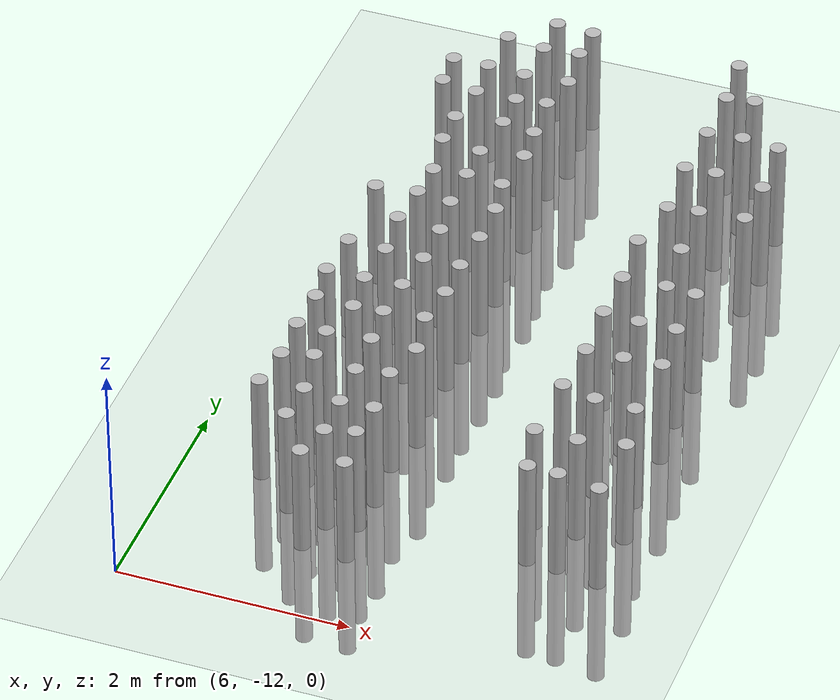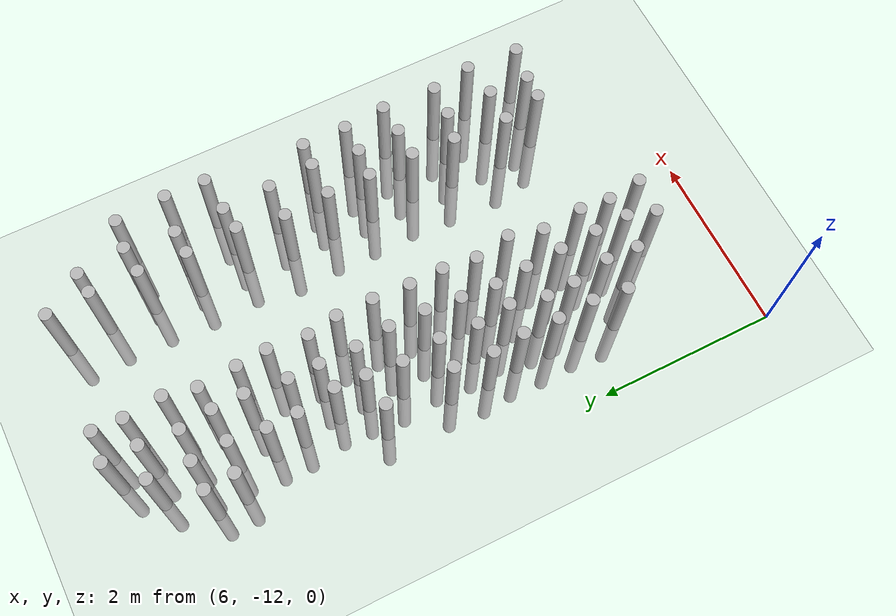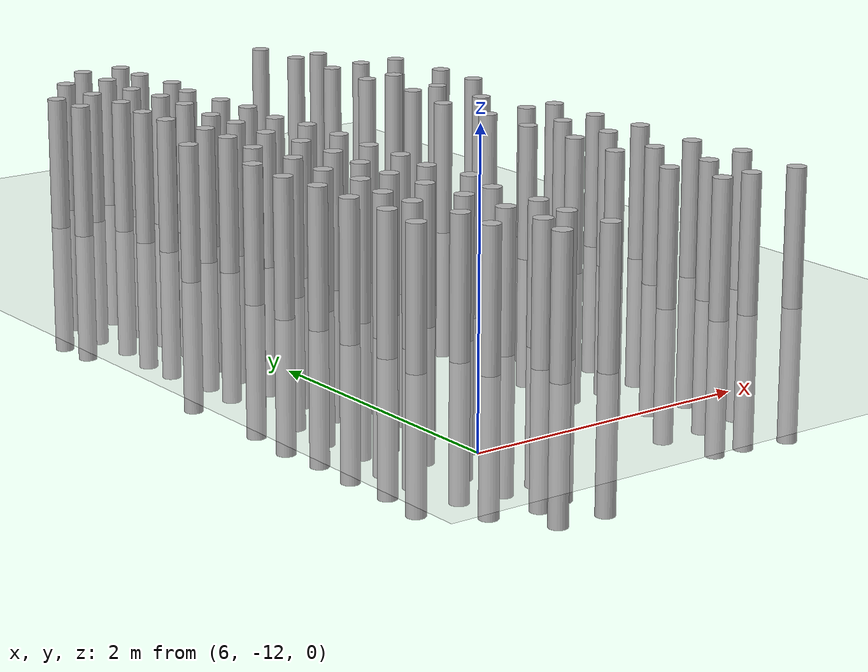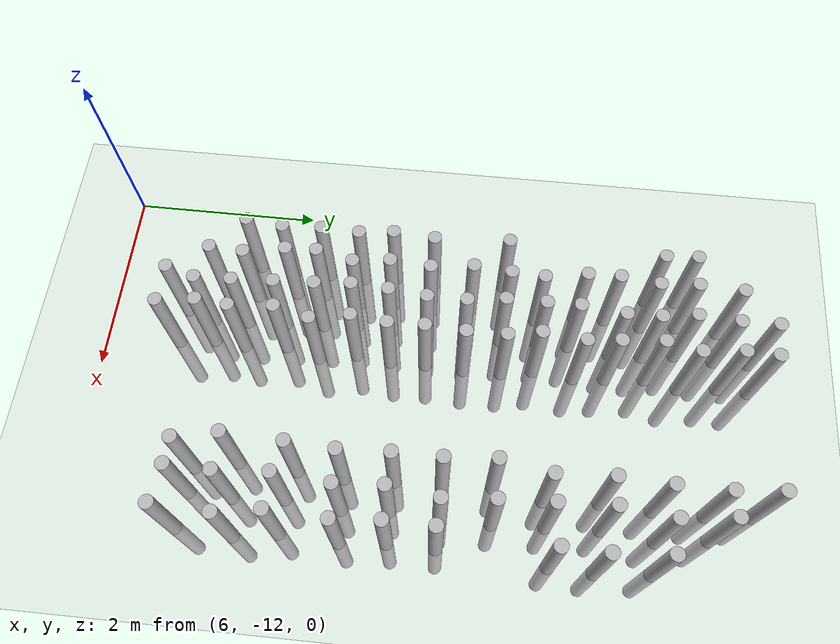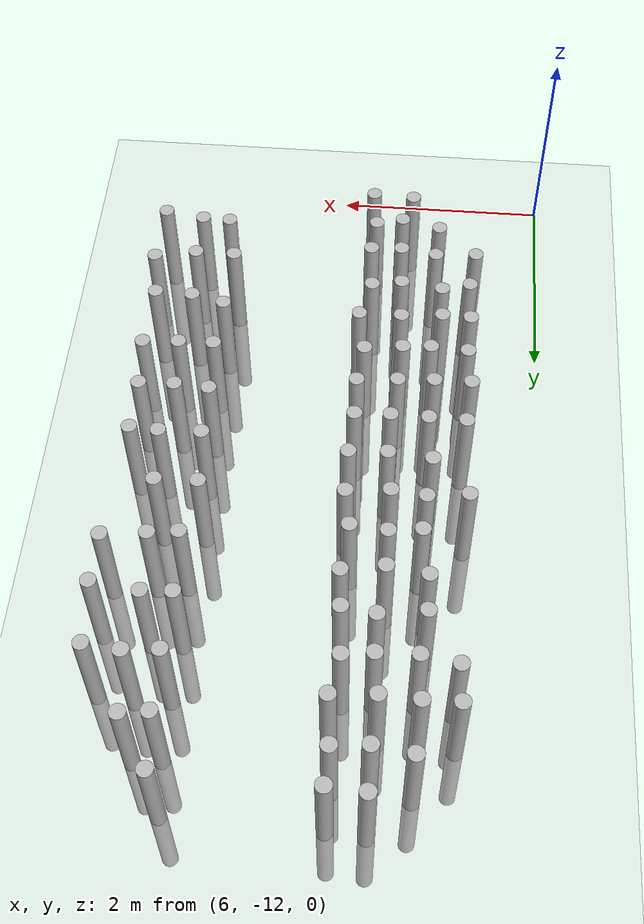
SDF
<sdf version="1.7">
 <world name="farmland_world">
  <model name="ground_plane">
   <static>1</static>
   <link name="link">
    <collision name="collision">
     <geometry><plane><normal>0 0 1</normal><size>40.0 40.0</size></plane></geometry>
     <surface><friction><ode><mu>100</mu><mu2>50</mu2></ode></friction></surface>
    </collision>
    <visual name="visual">
     <cast_shadows>0</cast_shadows>
     <geometry><plane><normal>0 0 1</normal><size>40.0 40.0</size></plane></geometry>
     <material>
      <script><uri>file://media/materials/scripts/gazebo.material</uri><name>Gazebo/Grey</name></script>
     </material>
    </visual>
   </link>
  </model>
  <model name="tree_3_210">
   <static>1</static>
   <link name="link">
    <collision name="collision">
     <geometry><cylinder><radius>0.07</radius><length>2.0</length></cylinder></geometry>
     <surface><friction><ode><mu>100</mu><mu2>50</mu2></ode></friction></surface>
    </collision>
    <visual name="visual">
     <geometry><cylinder><radius>0.07</radius><length>2.0</length></cylinder></geometry>
    </visual>
   </link>
   <pose>6.661419430506792 -5.869503759732511 0 0 0 0</pose>
  </model>
  <model name="tree_3_211">
   <static>1</static>
   <link name="link">
    <collision name="collision">
     <geometry><cylinder><radius>0.07</radius><length>2.0</length></cylinder></geometry>
     <surface><friction><ode><mu>100</mu><mu2>50</mu2></ode></friction></surface>
    </collision>
    <visual name="visual">
     <geometry><cylinder><radius>0.07</radius><length>2.0</length></cylinder></geometry>
    </visual>
   </link>
   <pose>6.680578724758737 -6.192556511057894 0 0 0 0</pose>
  </model>
  <model name="tree_3_215">
   <static>1</static>
   <link name="link">
    <collision name="collision">
     <geometry><cylinder><radius>0.07</radius><length>2.0</length></cylinder></geometry>
     <surface><friction><ode><mu>100</mu><mu2>50</mu2></ode></friction></surface>
    </collision>
    <visual name="visual">
     <geometry><cylinder><radius>0.07</radius><length>2.0</length></cylinder></geometry>
    </visual>
   </link>
   <pose>6.653816566270396 -7.769729110112926 0 0 0 0</pose>
  </model>
  <model name="tree_3_217">
   <static>1</static>
   <link name="link">
    <collision name="collision">
     <geometry><cylinder><radius>0.07</radius><length>2.0</length></cylinder></geometry>
     <surface><friction><ode><mu>100</mu><mu2>50</mu2></ode></friction></surface>
    </collision>
    <visual name="visual">
     <geometry><cylinder><radius>0.07</radius><length>2.0</length></cylinder></geometry>
    </visual>
   </link>
   <pose>6.698355699277604 -8.5338426556386 0 0 0 0</pose>
  </model>
  <model name="tree_3_218">
   <static>1</static>
   <link name="link">
    <collision name="collision">
     <geometry><cylinder><radius>0.07</radius><length>2.0</length></cylinder></geometry>
     <surface><friction><ode><mu>100</mu><mu2>50</mu2></ode></friction></surface>
    </collision>
    <visual name="visual">
     <geometry><cylinder><radius>0.07</radius><length>2.0</length></cylinder></geometry>
    </visual>
   </link>
   <pose>6.665693791469962 -8.95836685906748 0 0 0 0</pose>
  </model>
  <model name="tree_3_219">
   <static>1</static>
   <link name="link">
    <collision name="collision">
     <geometry><cylinder><radius>0.07</radius><length>2.0</length></cylinder></geometry>
     <surface><friction><ode><mu>100</mu><mu2>50</mu2></ode></friction></surface>
    </collision>
    <visual name="visual">
     <geometry><cylinder><radius>0.07</radius><length>2.0</length></cylinder></geometry>
    </visual>
   </link>
   <pose>6.705296153752825 -9.312489090265583 0 0 0 0</pose>
  </model>
  <model name="tree_3_220">
   <static>1</static>
   <link name="link">
    <collision name="collision">
     <geometry><cylinder><radius>0.07</radius><length>2.0</length></cylinder></geometry>
     <surface><friction><ode><mu>100</mu><mu2>50</mu2></ode></friction></surface>
    </collision>
    <visual name="visual">
     <geometry><cylinder><radius>0.07</radius><length>2.0</length></cylinder></geometry>
    </visual>
   </link>
   <pose>6.690504521665071 -9.702902558167029 0 0 0 0</pose>
  </model>
  <model name="tree_3_221">
   <static>1</static>
   <link name="link">
    <collision name="collision">
     <geometry><cylinder><radius>0.07</radius><length>2.0</length></cylinder></geometry>
     <surface><friction><ode><mu>100</mu><mu2>50</mu2></ode></friction></surface>
    </collision>
    <visual name="visual">
     <geometry><cylinder><radius>0.07</radius><length>2.0</length></cylinder></geometry>
    </visual>
   </link>
   <pose>6.709044371966493 -10.103652705946471 0 0 0 0</pose>
  </model>
  <model name="tree_3_222">
   <static>1</static>
   <link name="link">
    <collision name="collision">
     <geometry><cylinder><radius>0.07</radius><length>2.0</length></cylinder></geometry>
     <surface><friction><ode><mu>100</mu><mu2>50</mu2></ode></friction></surface>
    </collision>
    <visual name="visual">
     <geometry><cylinder><radius>0.07</radius><length>2.0</length></cylinder></geometry>
    </visual>
   </link>
   <pose>6.664566086439536 -10.48297500048212 0 0 0 0</pose>
  </model>
  <model name="tree_3_249">
   <static>1</static>
   <link name="link">
    <collision name="collision">
     <geometry><cylinder><radius>0.07</radius><length>2.0</length></cylinder></geometry>
     <surface><friction><ode><mu>100</mu><mu2>50</mu2></ode></friction></surface>
    </collision>
    <visual name="visual">
     <geometry><cylinder><radius>0.07</radius><length>2.0</length></cylinder></geometry>
    </visual>
   </link>
   <pose>6.997508072333215 -5.421699455969343 0 0 0 0</pose>
  </model>
  <model name="tree_3_250">
   <static>1</static>
   <link name="link">
    <collision name="collision">
     <geometry><cylinder><radius>0.07</radius><length>2.0</length></cylinder></geometry>
     <surface><friction><ode><mu>100</mu><mu2>50</mu2></ode></friction></surface>
    </collision>
    <visual name="visual">
     <geometry><cylinder><radius>0.07</radius><length>2.0</length></cylinder></geometry>
    </visual>
   </link>
   <pose>6.974443119919996 -5.865752800736061 0 0 0 0</pose>
  </model>
  <model name="tree_3_251">
   <static>1</static>
   <link name="link">
    <collision name="collision">
     <geometry><cylinder><radius>0.07</radius><length>2.0</length></cylinder></geometry>
     <surface><friction><ode><mu>100</mu><mu2>50</mu2></ode></friction></surface>
    </collision>
    <visual name="visual">
     <geometry><cylinder><radius>0.07</radius><length>2.0</length></cylinder></geometry>
    </visual>
   </link>
   <pose>7.002675457728153 -6.249060670467198 0 0 0 0</pose>
  </model>
  <model name="tree_3_252">
   <static>1</static>
   <link name="link">
    <collision name="collision">
     <geometry><cylinder><radius>0.07</radius><length>2.0</length></cylinder></geometry>
     <surface><friction><ode><mu>100</mu><mu2>50</mu2></ode></friction></surface>
    </collision>
    <visual name="visual">
     <geometry><cylinder><radius>0.07</radius><length>2.0</length></cylinder></geometry>
    </visual>
   </link>
   <pose>6.95506890457846 -6.6422497030970415 0 0 0 0</pose>
  </model>
  <model name="tree_3_253">
   <static>1</static>
   <link name="link">
    <collision name="collision">
     <geometry><cylinder><radius>0.07</radius><length>2.0</length></cylinder></geometry>
     <surface><friction><ode><mu>100</mu><mu2>50</mu2></ode></friction></surface>
    </collision>
    <visual name="visual">
     <geometry><cylinder><radius>0.07</radius><length>2.0</length></cylinder></geometry>
    </visual>
   </link>
   <pose>6.9599966379608444 -6.970294331644617 0 0 0 0</pose>
  </model>
  <model name="tree_3_254">
   <static>1</static>
   <link name="link">
    <collision name="collision">
     <geometry><cylinder><radius>0.07</radius><length>2.0</length></cylinder></geometry>
     <surface><friction><ode><mu>100</mu><mu2>50</mu2></ode></friction></surface>
    </collision>
    <visual name="visual">
     <geometry><cylinder><radius>0.07</radius><length>2.0</length></cylinder></geometry>
    </visual>
   </link>
   <pose>7.0315215357628995 -7.395706081586436 0 0 0 0</pose>
  </model>
  <model name="tree_3_255">
   <static>1</static>
   <link name="link">
    <collision name="collision">
     <geometry><cylinder><radius>0.07</radius><length>2.0</length></cylinder></geometry>
     <surface><friction><ode><mu>100</mu><mu2>50</mu2></ode></friction></surface>
    </collision>
    <visual name="visual">
     <geometry><cylinder><radius>0.07</radius><length>2.0</length></cylinder></geometry>
    </visual>
   </link>
   <pose>7.012227970563352 -7.7275407467975805 0 0 0 0</pose>
  </model>
  <model name="tree_3_256">
   <static>1</static>
   <link name="link">
    <collision name="collision">
     <geometry><cylinder><radius>0.07</radius><length>2.0</length></cylinder></geometry>
     <surface><friction><ode><mu>100</mu><mu2>50</mu2></ode></friction></surface>
    </collision>
    <visual name="visual">
     <geometry><cylinder><radius>0.07</radius><length>2.0</length></cylinder></geometry>
    </visual>
   </link>
   <pose>6.977696349704288 -8.110780625535874 0 0 0 0</pose>
  </model>
  <model name="tree_3_257">
   <static>1</static>
   <link name="link">
    <collision name="collision">
     <geometry><cylinder><radius>0.07</radius><length>2.0</length></cylinder></geometry>
     <surface><friction><ode><mu>100</mu><mu2>50</mu2></ode></friction></surface>
    </collision>
    <visual name="visual">
     <geometry><cylinder><radius>0.07</radius><length>2.0</length></cylinder></geometry>
    </visual>
   </link>
   <pose>7.029531110943387 -8.542619174548339 0 0 0 0</pose>
  </model>
  <model name="tree_3_258">
   <static>1</static>
   <link name="link">
    <collision name="collision">
     <geometry><cylinder><radius>0.07</radius><length>2.0</length></cylinder></geometry>
     <surface><friction><ode><mu>100</mu><mu2>50</mu2></ode></friction></surface>
    </collision>
    <visual name="visual">
     <geometry><cylinder><radius>0.07</radius><length>2.0</length></cylinder></geometry>
    </visual>
   </link>
   <pose>6.997785902423107 -8.956691142306541 0 0 0 0</pose>
  </model>
  <model name="tree_3_259">
   <static>1</static>
   <link name="link">
    <collision name="collision">
     <geometry><cylinder><radius>0.07</radius><length>2.0</length></cylinder></geometry>
     <surface><friction><ode><mu>100</mu><mu2>50</mu2></ode></friction></surface>
    </collision>
    <visual name="visual">
     <geometry><cylinder><radius>0.07</radius><length>2.0</length></cylinder></geometry>
    </visual>
   </link>
   <pose>7.042367247502619 -9.334998658792525 0 0 0 0</pose>
  </model>
  <model name="tree_3_260">
   <static>1</static>
   <link name="link">
    <collision name="collision">
     <geometry><cylinder><radius>0.07</radius><length>2.0</length></cylinder></geometry>
     <surface><friction><ode><mu>100</mu><mu2>50</mu2></ode></friction></surface>
    </collision>
    <visual name="visual">
     <geometry><cylinder><radius>0.07</radius><length>2.0</length></cylinder></geometry>
    </visual>
   </link>
   <pose>6.95273990331792 -9.716243220257393 0 0 0 0</pose>
  </model>
  <model name="tree_3_261">
   <static>1</static>
   <link name="link">
    <collision name="collision">
     <geometry><cylinder><radius>0.07</radius><length>2.0</length></cylinder></geometry>
     <surface><friction><ode><mu>100</mu><mu2>50</mu2></ode></friction></surface>
    </collision>
    <visual name="visual">
     <geometry><cylinder><radius>0.07</radius><length>2.0</length></cylinder></geometry>
    </visual>
   </link>
   <pose>6.966295142556262 -10.031080103076011 0 0 0 0</pose>
  </model>
  <model name="tree_3_262">
   <static>1</static>
   <link name="link">
    <collision name="collision">
     <geometry><cylinder><radius>0.07</radius><length>2.0</length></cylinder></geometry>
     <surface><friction><ode><mu>100</mu><mu2>50</mu2></ode></friction></surface>
    </collision>
    <visual name="visual">
     <geometry><cylinder><radius>0.07</radius><length>2.0</length></cylinder></geometry>
    </visual>
   </link>
   <pose>7.040948426436231 -10.4532282558649 0 0 0 0</pose>
  </model>
  <model name="tree_3_263">
   <static>1</static>
   <link name="link">
    <collision name="collision">
     <geometry><cylinder><radius>0.07</radius><length>2.0</length></cylinder></geometry>
     <surface><friction><ode><mu>100</mu><mu2>50</mu2></ode></friction></surface>
    </collision>
    <visual name="visual">
     <geometry><cylinder><radius>0.07</radius><length>2.0</length></cylinder></geometry>
    </visual>
   </link>
   <pose>7.020194036395752 -10.800615734483198 0 0 0 0</pose>
  </model>
  <model name="tree_3_288">
   <static>1</static>
   <link name="link">
    <collision name="collision">
     <geometry><cylinder><radius>0.07</radius><length>2.0</length></cylinder></geometry>
     <surface><friction><ode><mu>100</mu><mu2>50</mu2></ode></friction></surface>
    </collision>
    <visual name="visual">
     <geometry><cylinder><radius>0.07</radius><length>2.0</length></cylinder></geometry>
    </visual>
   </link>
   <pose>7.338082127825745 -5.097177732498156 0 0 0 0</pose>
  </model>
  <model name="tree_3_289">
   <static>1</static>
   <link name="link">
    <collision name="collision">
     <geometry><cylinder><radius>0.07</radius><length>2.0</length></cylinder></geometry>
     <surface><friction><ode><mu>100</mu><mu2>50</mu2></ode></friction></surface>
    </collision>
    <visual name="visual">
     <geometry><cylinder><radius>0.07</radius><length>2.0</length></cylinder></geometry>
    </visual>
   </link>
   <pose>7.341902268812603 -5.471091295825615 0 0 0 0</pose>
  </model>
  <model name="tree_3_290">
   <static>1</static>
   <link name="link">
    <collision name="collision">
     <geometry><cylinder><radius>0.07</radius><length>2.0</length></cylinder></geometry>
     <surface><friction><ode><mu>100</mu><mu2>50</mu2></ode></friction></surface>
    </collision>
    <visual name="visual">
     <geometry><cylinder><radius>0.07</radius><length>2.0</length></cylinder></geometry>
    </visual>
   </link>
   <pose>7.312480040197038 -5.885815736466504 0 0 0 0</pose>
  </model>
  <model name="tree_3_291">
   <static>1</static>
   <link name="link">
    <collision name="collision">
     <geometry><cylinder><radius>0.07</radius><length>2.0</length></cylinder></geometry>
     <surface><friction><ode><mu>100</mu><mu2>50</mu2></ode></friction></surface>
    </collision>
    <visual name="visual">
     <geometry><cylinder><radius>0.07</radius><length>2.0</length></cylinder></geometry>
    </visual>
   </link>
   <pose>7.360058016991394 -6.237891845271689 0 0 0 0</pose>
  </model>
  <model name="tree_3_292">
   <static>1</static>
   <link name="link">
    <collision name="collision">
     <geometry><cylinder><radius>0.07</radius><length>2.0</length></cylinder></geometry>
     <surface><friction><ode><mu>100</mu><mu2>50</mu2></ode></friction></surface>
    </collision>
    <visual name="visual">
     <geometry><cylinder><radius>0.07</radius><length>2.0</length></cylinder></geometry>
    </visual>
   </link>
   <pose>7.364464044634327 -6.581974338922381 0 0 0 0</pose>
  </model>
  <model name="tree_3_293">
   <static>1</static>
   <link name="link">
    <collision name="collision">
     <geometry><cylinder><radius>0.07</radius><length>2.0</length></cylinder></geometry>
     <surface><friction><ode><mu>100</mu><mu2>50</mu2></ode></friction></surface>
    </collision>
    <visual name="visual">
     <geometry><cylinder><radius>0.07</radius><length>2.0</length></cylinder></geometry>
    </visual>
   </link>
   <pose>7.315899234007439 -7.027452525969025 0 0 0 0</pose>
  </model>
  <model name="tree_3_294">
   <static>1</static>
   <link name="link">
    <collision name="collision">
     <geometry><cylinder><radius>0.07</radius><length>2.0</length></cylinder></geometry>
     <surface><friction><ode><mu>100</mu><mu2>50</mu2></ode></friction></surface>
    </collision>
    <visual name="visual">
     <geometry><cylinder><radius>0.07</radius><length>2.0</length></cylinder></geometry>
    </visual>
   </link>
   <pose>7.318537594245278 -7.362619189310038 0 0 0 0</pose>
  </model>
  <model name="tree_3_295">
   <static>1</static>
   <link name="link">
    <collision name="collision">
     <geometry><cylinder><radius>0.07</radius><length>2.0</length></cylinder></geometry>
     <surface><friction><ode><mu>100</mu><mu2>50</mu2></ode></friction></surface>
    </collision>
    <visual name="visual">
     <geometry><cylinder><radius>0.07</radius><length>2.0</length></cylinder></geometry>
    </visual>
   </link>
   <pose>7.318795905203578 -7.764601789874104 0 0 0 0</pose>
  </model>
  <model name="tree_3_296">
   <static>1</static>
   <link name="link">
    <collision name="collision">
     <geometry><cylinder><radius>0.07</radius><length>2.0</length></cylinder></geometry>
     <surface><friction><ode><mu>100</mu><mu2>50</mu2></ode></friction></surface>
    </collision>
    <visual name="visual">
     <geometry><cylinder><radius>0.07</radius><length>2.0</length></cylinder></geometry>
    </visual>
   </link>
   <pose>7.366415398217115 -8.148430344069395 0 0 0 0</pose>
  </model>
  <model name="tree_3_297">
   <static>1</static>
   <link name="link">
    <collision name="collision">
     <geometry><cylinder><radius>0.07</radius><length>2.0</length></cylinder></geometry>
     <surface><friction><ode><mu>100</mu><mu2>50</mu2></ode></friction></surface>
    </collision>
    <visual name="visual">
     <geometry><cylinder><radius>0.07</radius><length>2.0</length></cylinder></geometry>
    </visual>
   </link>
   <pose>7.3659171061617394 -8.548735187188734 0 0 0 0</pose>
  </model>
  <model name="tree_3_298">
   <static>1</static>
   <link name="link">
    <collision name="collision">
     <geometry><cylinder><radius>0.07</radius><length>2.0</length></cylinder></geometry>
     <surface><friction><ode><mu>100</mu><mu2>50</mu2></ode></friction></surface>
    </collision>
    <visual name="visual">
     <geometry><cylinder><radius>0.07</radius><length>2.0</length></cylinder></geometry>
    </visual>
   </link>
   <pose>7.323950699725348 -8.938228352238765 0 0 0 0</pose>
  </model>
  <model name="tree_3_299">
   <static>1</static>
   <link name="link">
    <collision name="collision">
     <geometry><cylinder><radius>0.07</radius><length>2.0</length></cylinder></geometry>
     <surface><friction><ode><mu>100</mu><mu2>50</mu2></ode></friction></surface>
    </collision>
    <visual name="visual">
     <geometry><cylinder><radius>0.07</radius><length>2.0</length></cylinder></geometry>
    </visual>
   </link>
   <pose>7.299284211380461 -9.31605158833739 0 0 0 0</pose>
  </model>
  <model name="tree_3_300">
   <static>1</static>
   <link name="link">
    <collision name="collision">
     <geometry><cylinder><radius>0.07</radius><length>2.0</length></cylinder></geometry>
     <surface><friction><ode><mu>100</mu><mu2>50</mu2></ode></friction></surface>
    </collision>
    <visual name="visual">
     <geometry><cylinder><radius>0.07</radius><length>2.0</length></cylinder></geometry>
    </visual>
   </link>
   <pose>7.329983277772594 -9.681892419258995 0 0 0 0</pose>
  </model>
  <model name="tree_3_301">
   <static>1</static>
   <link name="link">
    <collision name="collision">
     <geometry><cylinder><radius>0.07</radius><length>2.0</length></cylinder></geometry>
     <surface><friction><ode><mu>100</mu><mu2>50</mu2></ode></friction></surface>
    </collision>
    <visual name="visual">
     <geometry><cylinder><radius>0.07</radius><length>2.0</length></cylinder></geometry>
    </visual>
   </link>
   <pose>7.347064204319776 -10.091519056092961 0 0 0 0</pose>
  </model>
  <model name="tree_3_302">
   <static>1</static>
   <link name="link">
    <collision name="collision">
     <geometry><cylinder><radius>0.07</radius><length>2.0</length></cylinder></geometry>
     <surface><friction><ode><mu>100</mu><mu2>50</mu2></ode></friction></surface>
    </collision>
    <visual name="visual">
     <geometry><cylinder><radius>0.07</radius><length>2.0</length></cylinder></geometry>
    </visual>
   </link>
   <pose>7.369427873741423 -10.510392032623004 0 0 0 0</pose>
  </model>
  <model name="tree_3_303">
   <static>1</static>
   <link name="link">
    <collision name="collision">
     <geometry><cylinder><radius>0.07</radius><length>2.0</length></cylinder></geometry>
     <surface><friction><ode><mu>100</mu><mu2>50</mu2></ode></friction></surface>
    </collision>
    <visual name="visual">
     <geometry><cylinder><radius>0.07</radius><length>2.0</length></cylinder></geometry>
    </visual>
   </link>
   <pose>7.377949473601482 -10.886628802909703 0 0 0 0</pose>
  </model>
  <model name="tree_3_304">
   <static>1</static>
   <link name="link">
    <collision name="collision">
     <geometry><cylinder><radius>0.07</radius><length>2.0</length></cylinder></geometry>
     <surface><friction><ode><mu>100</mu><mu2>50</mu2></ode></friction></surface>
    </collision>
    <visual name="visual">
     <geometry><cylinder><radius>0.07</radius><length>2.0</length></cylinder></geometry>
    </visual>
   </link>
   <pose>7.289111950155678 -11.188456390560404 0 0 0 0</pose>
  </model>
  <model name="tree_3_328">
   <static>1</static>
   <link name="link">
    <collision name="collision">
     <geometry><cylinder><radius>0.07</radius><length>2.0</length></cylinder></geometry>
     <surface><friction><ode><mu>100</mu><mu2>50</mu2></ode></friction></surface>
    </collision>
    <visual name="visual">
     <geometry><cylinder><radius>0.07</radius><length>2.0</length></cylinder></geometry>
    </visual>
   </link>
   <pose>7.669363551949399 -5.122112792533206 0 0 0 0</pose>
  </model>
  <model name="tree_3_329">
   <static>1</static>
   <link name="link">
    <collision name="collision">
     <geometry><cylinder><radius>0.07</radius><length>2.0</length></cylinder></geometry>
     <surface><friction><ode><mu>100</mu><mu2>50</mu2></ode></friction></surface>
    </collision>
    <visual name="visual">
     <geometry><cylinder><radius>0.07</radius><length>2.0</length></cylinder></geometry>
    </visual>
   </link>
   <pose>7.6567030119739306 -5.442221363439872 0 0 0 0</pose>
  </model>
  <model name="tree_3_330">
   <static>1</static>
   <link name="link">
    <collision name="collision">
     <geometry><cylinder><radius>0.07</radius><length>2.0</length></cylinder></geometry>
     <surface><friction><ode><mu>100</mu><mu2>50</mu2></ode></friction></surface>
    </collision>
    <visual name="visual">
     <geometry><cylinder><radius>0.07</radius><length>2.0</length></cylinder></geometry>
    </visual>
   </link>
   <pose>7.698571622125114 -5.858482230105319 0 0 0 0</pose>
  </model>
  <model name="tree_3_331">
   <static>1</static>
   <link name="link">
    <collision name="collision">
     <geometry><cylinder><radius>0.07</radius><length>2.0</length></cylinder></geometry>
     <surface><friction><ode><mu>100</mu><mu2>50</mu2></ode></friction></surface>
    </collision>
    <visual name="visual">
     <geometry><cylinder><radius>0.07</radius><length>2.0</length></cylinder></geometry>
    </visual>
   </link>
   <pose>7.625345487487055 -6.204829100969283 0 0 0 0</pose>
  </model>
  <model name="tree_3_332">
   <static>1</static>
   <link name="link">
    <collision name="collision">
     <geometry><cylinder><radius>0.07</radius><length>2.0</length></cylinder></geometry>
     <surface><friction><ode><mu>100</mu><mu2>50</mu2></ode></friction></surface>
    </collision>
    <visual name="visual">
     <geometry><cylinder><radius>0.07</radius><length>2.0</length></cylinder></geometry>
    </visual>
   </link>
   <pose>7.659286082254485 -6.627593535540693 0 0 0 0</pose>
  </model>
  <model name="tree_3_333">
   <static>1</static>
   <link name="link">
    <collision name="collision">
     <geometry><cylinder><radius>0.07</radius><length>2.0</length></cylinder></geometry>
     <surface><friction><ode><mu>100</mu><mu2>50</mu2></ode></friction></surface>
    </collision>
    <visual name="visual">
     <geometry><cylinder><radius>0.07</radius><length>2.0</length></cylinder></geometry>
    </visual>
   </link>
   <pose>7.688352643096186 -6.961790508193157 0 0 0 0</pose>
  </model>
  <model name="tree_3_334">
   <static>1</static>
   <link name="link">
    <collision name="collision">
     <geometry><cylinder><radius>0.07</radius><length>2.0</length></cylinder></geometry>
     <surface><friction><ode><mu>100</mu><mu2>50</mu2></ode></friction></surface>
    </collision>
    <visual name="visual">
     <geometry><cylinder><radius>0.07</radius><length>2.0</length></cylinder></geometry>
    </visual>
   </link>
   <pose>7.645060633562767 -7.393798231412224 0 0 0 0</pose>
  </model>
  <model name="tree_3_335">
   <static>1</static>
   <link name="link">
    <collision name="collision">
     <geometry><cylinder><radius>0.07</radius><length>2.0</length></cylinder></geometry>
     <surface><friction><ode><mu>100</mu><mu2>50</mu2></ode></friction></surface>
    </collision>
    <visual name="visual">
     <geometry><cylinder><radius>0.07</radius><length>2.0</length></cylinder></geometry>
    </visual>
   </link>
   <pose>7.703946183450229 -7.728497909033914 0 0 0 0</pose>
  </model>
  <model name="tree_3_336">
   <static>1</static>
   <link name="link">
    <collision name="collision">
     <geometry><cylinder><radius>0.07</radius><length>2.0</length></cylinder></geometry>
     <surface><friction><ode><mu>100</mu><mu2>50</mu2></ode></friction></surface>
    </collision>
    <visual name="visual">
     <geometry><cylinder><radius>0.07</radius><length>2.0</length></cylinder></geometry>
    </visual>
   </link>
   <pose>7.707681115898896 -8.131679210635669 0 0 0 0</pose>
  </model>
  <model name="tree_3_337">
   <static>1</static>
   <link name="link">
    <collision name="collision">
     <geometry><cylinder><radius>0.07</radius><length>2.0</length></cylinder></geometry>
     <surface><friction><ode><mu>100</mu><mu2>50</mu2></ode></friction></surface>
    </collision>
    <visual name="visual">
     <geometry><cylinder><radius>0.07</radius><length>2.0</length></cylinder></geometry>
    </visual>
   </link>
   <pose>7.6833331415782835 -8.537458689170323 0 0 0 0</pose>
  </model>
  <model name="tree_3_338">
   <static>1</static>
   <link name="link">
    <collision name="collision">
     <geometry><cylinder><radius>0.07</radius><length>2.0</length></cylinder></geometry>
     <surface><friction><ode><mu>100</mu><mu2>50</mu2></ode></friction></surface>
    </collision>
    <visual name="visual">
     <geometry><cylinder><radius>0.07</radius><length>2.0</length></cylinder></geometry>
    </visual>
   </link>
   <pose>7.689093944319213 -8.909797223754461 0 0 0 0</pose>
  </model>
  <model name="tree_3_339">
   <static>1</static>
   <link name="link">
    <collision name="collision">
     <geometry><cylinder><radius>0.07</radius><length>2.0</length></cylinder></geometry>
     <surface><friction><ode><mu>100</mu><mu2>50</mu2></ode></friction></surface>
    </collision>
    <visual name="visual">
     <geometry><cylinder><radius>0.07</radius><length>2.0</length></cylinder></geometry>
    </visual>
   </link>
   <pose>7.644492116946469 -9.276975472759869 0 0 0 0</pose>
  </model>
  <model name="tree_3_340">
   <static>1</static>
   <link name="link">
    <collision name="collision">
     <geometry><cylinder><radius>0.07</radius><length>2.0</length></cylinder></geometry>
     <surface><friction><ode><mu>100</mu><mu2>50</mu2></ode></friction></surface>
    </collision>
    <visual name="visual">
     <geometry><cylinder><radius>0.07</radius><length>2.0</length></cylinder></geometry>
    </visual>
   </link>
   <pose>7.718061186066423 -9.677609358058257 0 0 0 0</pose>
  </model>
  <model name="tree_3_341">
   <static>1</static>
   <link name="link">
    <collision name="collision">
     <geometry><cylinder><radius>0.07</radius><length>2.0</length></cylinder></geometry>
     <surface><friction><ode><mu>100</mu><mu2>50</mu2></ode></friction></surface>
    </collision>
    <visual name="visual">
     <geometry><cylinder><radius>0.07</radius><length>2.0</length></cylinder></geometry>
    </visual>
   </link>
   <pose>7.622434095120806 -10.041930487853005 0 0 0 0</pose>
  </model>
  <model name="tree_3_342">
   <static>1</static>
   <link name="link">
    <collision name="collision">
     <geometry><cylinder><radius>0.07</radius><length>2.0</length></cylinder></geometry>
     <surface><friction><ode><mu>100</mu><mu2>50</mu2></ode></friction></surface>
    </collision>
    <visual name="visual">
     <geometry><cylinder><radius>0.07</radius><length>2.0</length></cylinder></geometry>
    </visual>
   </link>
   <pose>7.656485531601387 -10.49281967130891 0 0 0 0</pose>
  </model>
  <model name="tree_3_343">
   <static>1</static>
   <link name="link">
    <collision name="collision">
     <geometry><cylinder><radius>0.07</radius><length>2.0</length></cylinder></geometry>
     <surface><friction><ode><mu>100</mu><mu2>50</mu2></ode></friction></surface>
    </collision>
    <visual name="visual">
     <geometry><cylinder><radius>0.07</radius><length>2.0</length></cylinder></geometry>
    </visual>
   </link>
   <pose>7.624181994252486 -10.823878352734894 0 0 0 0</pose>
  </model>
  <model name="tree_3_344">
   <static>1</static>
   <link name="link">
    <collision name="collision">
     <geometry><cylinder><radius>0.07</radius><length>2.0</length></cylinder></geometry>
     <surface><friction><ode><mu>100</mu><mu2>50</mu2></ode></friction></surface>
    </collision>
    <visual name="visual">
     <geometry><cylinder><radius>0.07</radius><length>2.0</length></cylinder></geometry>
    </visual>
   </link>
   <pose>7.672770821535656 -11.208423762198558 0 0 0 0</pose>
  </model>
  <model name="tree_3_366">
   <static>1</static>
   <link name="link">
    <collision name="collision">
     <geometry><cylinder><radius>0.07</radius><length>2.0</length></cylinder></geometry>
     <surface><friction><ode><mu>100</mu><mu2>50</mu2></ode></friction></surface>
    </collision>
    <visual name="visual">
     <geometry><cylinder><radius>0.07</radius><length>2.0</length></cylinder></geometry>
    </visual>
   </link>
   <pose>9.004543157563944 -5.143635860542065 0 0 0 0</pose>
  </model>
  <model name="tree_3_367">
   <static>1</static>
   <link name="link">
    <collision name="collision">
     <geometry><cylinder><radius>0.07</radius><length>2.0</length></cylinder></geometry>
     <surface><friction><ode><mu>100</mu><mu2>50</mu2></ode></friction></surface>
    </collision>
    <visual name="visual">
     <geometry><cylinder><radius>0.07</radius><length>2.0</length></cylinder></geometry>
    </visual>
   </link>
   <pose>9.04250042304246 -5.612888443233912 0 0 0 0</pose>
  </model>
  <model name="tree_3_368">
   <static>1</static>
   <link name="link">
    <collision name="collision">
     <geometry><cylinder><radius>0.07</radius><length>2.0</length></cylinder></geometry>
     <surface><friction><ode><mu>100</mu><mu2>50</mu2></ode></friction></surface>
    </collision>
    <visual name="visual">
     <geometry><cylinder><radius>0.07</radius><length>2.0</length></cylinder></geometry>
    </visual>
   </link>
   <pose>9.039959746782023 -6.135974821905103 0 0 0 0</pose>
  </model>
  <model name="tree_3_369">
   <static>1</static>
   <link name="link">
    <collision name="collision">
     <geometry><cylinder><radius>0.07</radius><length>2.0</length></cylinder></geometry>
     <surface><friction><ode><mu>100</mu><mu2>50</mu2></ode></friction></surface>
    </collision>
    <visual name="visual">
     <geometry><cylinder><radius>0.07</radius><length>2.0</length></cylinder></geometry>
    </visual>
   </link>
   <pose>9.01342538582977 -6.656164763658558 0 0 0 0</pose>
  </model>
  <model name="tree_3_370">
   <static>1</static>
   <link name="link">
    <collision name="collision">
     <geometry><cylinder><radius>0.07</radius><length>2.0</length></cylinder></geometry>
     <surface><friction><ode><mu>100</mu><mu2>50</mu2></ode></friction></surface>
    </collision>
    <visual name="visual">
     <geometry><cylinder><radius>0.07</radius><length>2.0</length></cylinder></geometry>
    </visual>
   </link>
   <pose>9.046358324168757 -7.220893111588388 0 0 0 0</pose>
  </model>
  <model name="tree_3_371">
   <static>1</static>
   <link name="link">
    <collision name="collision">
     <geometry><cylinder><radius>0.07</radius><length>2.0</length></cylinder></geometry>
     <surface><friction><ode><mu>100</mu><mu2>50</mu2></ode></friction></surface>
    </collision>
    <visual name="visual">
     <geometry><cylinder><radius>0.07</radius><length>2.0</length></cylinder></geometry>
    </visual>
   </link>
   <pose>8.955179320887977 -7.730233494391056 0 0 0 0</pose>
  </model>
  <model name="tree_3_372">
   <static>1</static>
   <link name="link">
    <collision name="collision">
     <geometry><cylinder><radius>0.07</radius><length>2.0</length></cylinder></geometry>
     <surface><friction><ode><mu>100</mu><mu2>50</mu2></ode></friction></surface>
    </collision>
    <visual name="visual">
     <geometry><cylinder><radius>0.07</radius><length>2.0</length></cylinder></geometry>
    </visual>
   </link>
   <pose>8.992658450615787 -8.23609188693117 0 0 0 0</pose>
  </model>
  <model name="tree_3_373">
   <static>1</static>
   <link name="link">
    <collision name="collision">
     <geometry><cylinder><radius>0.07</radius><length>2.0</length></cylinder></geometry>
     <surface><friction><ode><mu>100</mu><mu2>50</mu2></ode></friction></surface>
    </collision>
    <visual name="visual">
     <geometry><cylinder><radius>0.07</radius><length>2.0</length></cylinder></geometry>
    </visual>
   </link>
   <pose>8.992035044407235 -8.716021449473175 0 0 0 0</pose>
  </model>
  <model name="tree_3_374">
   <static>1</static>
   <link name="link">
    <collision name="collision">
     <geometry><cylinder><radius>0.07</radius><length>2.0</length></cylinder></geometry>
     <surface><friction><ode><mu>100</mu><mu2>50</mu2></ode></friction></surface>
    </collision>
    <visual name="visual">
     <geometry><cylinder><radius>0.07</radius><length>2.0</length></cylinder></geometry>
    </visual>
   </link>
   <pose>9.014773936557358 -9.226590578923892 0 0 0 0</pose>
  </model>
  <model name="tree_3_375">
   <static>1</static>
   <link name="link">
    <collision name="collision">
     <geometry><cylinder><radius>0.07</radius><length>2.0</length></cylinder></geometry>
     <surface><friction><ode><mu>100</mu><mu2>50</mu2></ode></friction></surface>
    </collision>
    <visual name="visual">
     <geometry><cylinder><radius>0.07</radius><length>2.0</length></cylinder></geometry>
    </visual>
   </link>
   <pose>8.983688578660352 -9.709689289301565 0 0 0 0</pose>
  </model>
  <model name="tree_3_376">
   <static>1</static>
   <link name="link">
    <collision name="collision">
     <geometry><cylinder><radius>0.07</radius><length>2.0</length></cylinder></geometry>
     <surface><friction><ode><mu>100</mu><mu2>50</mu2></ode></friction></surface>
    </collision>
    <visual name="visual">
     <geometry><cylinder><radius>0.07</radius><length>2.0</length></cylinder></geometry>
    </visual>
   </link>
   <pose>8.955759918504432 -10.31725903320161 0 0 0 0</pose>
  </model>
  <model name="tree_3_377">
   <static>1</static>
   <link name="link">
    <collision name="collision">
     <geometry><cylinder><radius>0.07</radius><length>2.0</length></cylinder></geometry>
     <surface><friction><ode><mu>100</mu><mu2>50</mu2></ode></friction></surface>
    </collision>
    <visual name="visual">
     <geometry><cylinder><radius>0.07</radius><length>2.0</length></cylinder></geometry>
    </visual>
   </link>
   <pose>9.049808831988393 -10.753776907489652 0 0 0 0</pose>
  </model>
  <model name="tree_3_397">
   <static>1</static>
   <link name="link">
    <collision name="collision">
     <geometry><cylinder><radius>0.07</radius><length>2.0</length></cylinder></geometry>
     <surface><friction><ode><mu>100</mu><mu2>50</mu2></ode></friction></surface>
    </collision>
    <visual name="visual">
     <geometry><cylinder><radius>0.07</radius><length>2.0</length></cylinder></geometry>
    </visual>
   </link>
   <pose>9.284365959479453 -5.581103250336739 0 0 0 0</pose>
  </model>
  <model name="tree_3_398">
   <static>1</static>
   <link name="link">
    <collision name="collision">
     <geometry><cylinder><radius>0.07</radius><length>2.0</length></cylinder></geometry>
     <surface><friction><ode><mu>100</mu><mu2>50</mu2></ode></friction></surface>
    </collision>
    <visual name="visual">
     <geometry><cylinder><radius>0.07</radius><length>2.0</length></cylinder></geometry>
    </visual>
   </link>
   <pose>9.34563901251964 -6.106371311243778 0 0 0 0</pose>
  </model>
  <model name="tree_3_399">
   <static>1</static>
   <link name="link">
    <collision name="collision">
     <geometry><cylinder><radius>0.07</radius><length>2.0</length></cylinder></geometry>
     <surface><friction><ode><mu>100</mu><mu2>50</mu2></ode></friction></surface>
    </collision>
    <visual name="visual">
     <geometry><cylinder><radius>0.07</radius><length>2.0</length></cylinder></geometry>
    </visual>
   </link>
   <pose>9.281978845551519 -6.64226498523478 0 0 0 0</pose>
  </model>
  <model name="tree_3_400">
   <static>1</static>
   <link name="link">
    <collision name="collision">
     <geometry><cylinder><radius>0.07</radius><length>2.0</length></cylinder></geometry>
     <surface><friction><ode><mu>100</mu><mu2>50</mu2></ode></friction></surface>
    </collision>
    <visual name="visual">
     <geometry><cylinder><radius>0.07</radius><length>2.0</length></cylinder></geometry>
    </visual>
   </link>
   <pose>9.307454466320841 -7.18809778800389 0 0 0 0</pose>
  </model>
  <model name="tree_3_401">
   <static>1</static>
   <link name="link">
    <collision name="collision">
     <geometry><cylinder><radius>0.07</radius><length>2.0</length></cylinder></geometry>
     <surface><friction><ode><mu>100</mu><mu2>50</mu2></ode></friction></surface>
    </collision>
    <visual name="visual">
     <geometry><cylinder><radius>0.07</radius><length>2.0</length></cylinder></geometry>
    </visual>
   </link>
   <pose>9.330665997098498 -7.718813482367253 0 0 0 0</pose>
  </model>
  <model name="tree_3_402">
   <static>1</static>
   <link name="link">
    <collision name="collision">
     <geometry><cylinder><radius>0.07</radius><length>2.0</length></cylinder></geometry>
     <surface><friction><ode><mu>100</mu><mu2>50</mu2></ode></friction></surface>
    </collision>
    <visual name="visual">
     <geometry><cylinder><radius>0.07</radius><length>2.0</length></cylinder></geometry>
    </visual>
   </link>
   <pose>9.37035426190472 -8.225777599494348 0 0 0 0</pose>
  </model>
  <model name="tree_3_403">
   <static>1</static>
   <link name="link">
    <collision name="collision">
     <geometry><cylinder><radius>0.07</radius><length>2.0</length></cylinder></geometry>
     <surface><friction><ode><mu>100</mu><mu2>50</mu2></ode></friction></surface>
    </collision>
    <visual name="visual">
     <geometry><cylinder><radius>0.07</radius><length>2.0</length></cylinder></geometry>
    </visual>
   </link>
   <pose>9.302385064111686 -8.737961998638818 0 0 0 0</pose>
  </model>
  <model name="tree_3_404">
   <static>1</static>
   <link name="link">
    <collision name="collision">
     <geometry><cylinder><radius>0.07</radius><length>2.0</length></cylinder></geometry>
     <surface><friction><ode><mu>100</mu><mu2>50</mu2></ode></friction></surface>
    </collision>
    <visual name="visual">
     <geometry><cylinder><radius>0.07</radius><length>2.0</length></cylinder></geometry>
    </visual>
   </link>
   <pose>9.33361108315517 -9.21793418090616 0 0 0 0</pose>
  </model>
  <model name="tree_3_405">
   <static>1</static>
   <link name="link">
    <collision name="collision">
     <geometry><cylinder><radius>0.07</radius><length>2.0</length></cylinder></geometry>
     <surface><friction><ode><mu>100</mu><mu2>50</mu2></ode></friction></surface>
    </collision>
    <visual name="visual">
     <geometry><cylinder><radius>0.07</radius><length>2.0</length></cylinder></geometry>
    </visual>
   </link>
   <pose>9.284668597562627 -9.786345109277438 0 0 0 0</pose>
  </model>
  <model name="tree_3_406">
   <static>1</static>
   <link name="link">
    <collision name="collision">
     <geometry><cylinder><radius>0.07</radius><length>2.0</length></cylinder></geometry>
     <surface><friction><ode><mu>100</mu><mu2>50</mu2></ode></friction></surface>
    </collision>
    <visual name="visual">
     <geometry><cylinder><radius>0.07</radius><length>2.0</length></cylinder></geometry>
    </visual>
   </link>
   <pose>9.319611953210462 -10.318187233575255 0 0 0 0</pose>
  </model>
  <model name="tree_3_407">
   <static>1</static>
   <link name="link">
    <collision name="collision">
     <geometry><cylinder><radius>0.07</radius><length>2.0</length></cylinder></geometry>
     <surface><friction><ode><mu>100</mu><mu2>50</mu2></ode></friction></surface>
    </collision>
    <visual name="visual">
     <geometry><cylinder><radius>0.07</radius><length>2.0</length></cylinder></geometry>
    </visual>
   </link>
   <pose>9.307680483591227 -10.764010328246659 0 0 0 0</pose>
  </model>
  <model name="tree_3_428">
   <static>1</static>
   <link name="link">
    <collision name="collision">
     <geometry><cylinder><radius>0.07</radius><length>2.0</length></cylinder></geometry>
     <surface><friction><ode><mu>100</mu><mu2>50</mu2></ode></friction></surface>
    </collision>
    <visual name="visual">
     <geometry><cylinder><radius>0.07</radius><length>2.0</length></cylinder></geometry>
    </visual>
   </link>
   <pose>9.66860656164791 -6.140847319043522 0 0 0 0</pose>
  </model>
  <model name="tree_3_429">
   <static>1</static>
   <link name="link">
    <collision name="collision">
     <geometry><cylinder><radius>0.07</radius><length>2.0</length></cylinder></geometry>
     <surface><friction><ode><mu>100</mu><mu2>50</mu2></ode></friction></surface>
    </collision>
    <visual name="visual">
     <geometry><cylinder><radius>0.07</radius><length>2.0</length></cylinder></geometry>
    </visual>
   </link>
   <pose>9.710263064902922 -6.6994096449739455 0 0 0 0</pose>
  </model>
  <model name="tree_3_430">
   <static>1</static>
   <link name="link">
    <collision name="collision">
     <geometry><cylinder><radius>0.07</radius><length>2.0</length></cylinder></geometry>
     <surface><friction><ode><mu>100</mu><mu2>50</mu2></ode></friction></surface>
    </collision>
    <visual name="visual">
     <geometry><cylinder><radius>0.07</radius><length>2.0</length></cylinder></geometry>
    </visual>
   </link>
   <pose>9.697060379580739 -7.143781963942661 0 0 0 0</pose>
  </model>
  <model name="tree_3_432">
   <static>1</static>
   <link name="link">
    <collision name="collision">
     <geometry><cylinder><radius>0.07</radius><length>2.0</length></cylinder></geometry>
     <surface><friction><ode><mu>100</mu><mu2>50</mu2></ode></friction></surface>
    </collision>
    <visual name="visual">
     <geometry><cylinder><radius>0.07</radius><length>2.0</length></cylinder></geometry>
    </visual>
   </link>
   <pose>9.62752556066424 -8.24184881161407 0 0 0 0</pose>
  </model>
  <model name="tree_3_433">
   <static>1</static>
   <link name="link">
    <collision name="collision">
     <geometry><cylinder><radius>0.07</radius><length>2.0</length></cylinder></geometry>
     <surface><friction><ode><mu>100</mu><mu2>50</mu2></ode></friction></surface>
    </collision>
    <visual name="visual">
     <geometry><cylinder><radius>0.07</radius><length>2.0</length></cylinder></geometry>
    </visual>
   </link>
   <pose>9.621751960684449 -8.728455119702703 0 0 0 0</pose>
  </model>
  <model name="tree_3_434">
   <static>1</static>
   <link name="link">
    <collision name="collision">
     <geometry><cylinder><radius>0.07</radius><length>2.0</length></cylinder></geometry>
     <surface><friction><ode><mu>100</mu><mu2>50</mu2></ode></friction></surface>
    </collision>
    <visual name="visual">
     <geometry><cylinder><radius>0.07</radius><length>2.0</length></cylinder></geometry>
    </visual>
   </link>
   <pose>9.657910944290263 -9.197269183480703 0 0 0 0</pose>
  </model>
  <model name="tree_3_435">
   <static>1</static>
   <link name="link">
    <collision name="collision">
     <geometry><cylinder><radius>0.07</radius><length>2.0</length></cylinder></geometry>
     <surface><friction><ode><mu>100</mu><mu2>50</mu2></ode></friction></surface>
    </collision>
    <visual name="visual">
     <geometry><cylinder><radius>0.07</radius><length>2.0</length></cylinder></geometry>
    </visual>
   </link>
   <pose>9.630267198438473 -9.797449390516178 0 0 0 0</pose>
  </model>
  <model name="tree_3_436">
   <static>1</static>
   <link name="link">
    <collision name="collision">
     <geometry><cylinder><radius>0.07</radius><length>2.0</length></cylinder></geometry>
     <surface><friction><ode><mu>100</mu><mu2>50</mu2></ode></friction></surface>
    </collision>
    <visual name="visual">
     <geometry><cylinder><radius>0.07</radius><length>2.0</length></cylinder></geometry>
    </visual>
   </link>
   <pose>9.702349588064411 -10.243936605882782 0 0 0 0</pose>
  </model>
  <model name="tree_3_437">
   <static>1</static>
   <link name="link">
    <collision name="collision">
     <geometry><cylinder><radius>0.07</radius><length>2.0</length></cylinder></geometry>
     <surface><friction><ode><mu>100</mu><mu2>50</mu2></ode></friction></surface>
    </collision>
    <visual name="visual">
     <geometry><cylinder><radius>0.07</radius><length>2.0</length></cylinder></geometry>
    </visual>
   </link>
   <pose>9.673181106434228 -10.824636013524229 0 0 0 0</pose>
  </model>
 </world>
</sdf>
